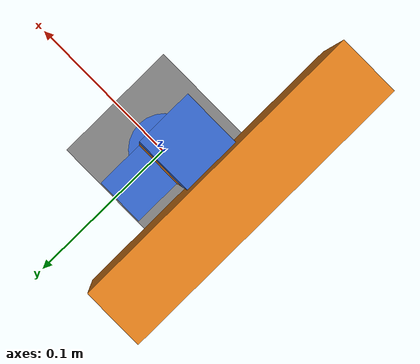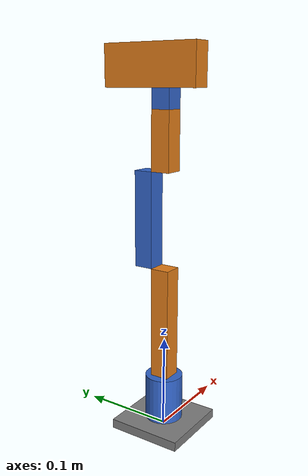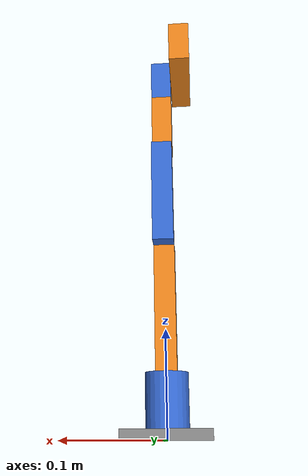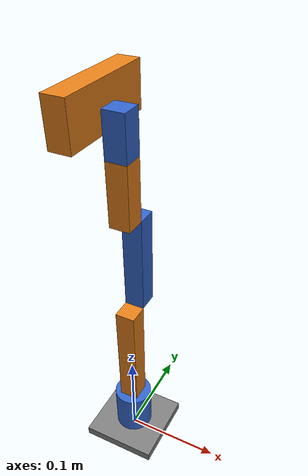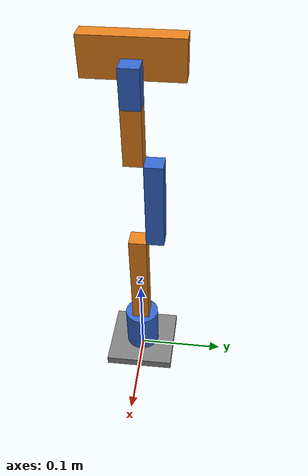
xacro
<?xml version="1.0"?>
<robot xmlns:xacro="http://www.ros.org/wiki/xacro" name="leader_arm">

  <!-- ===== Adjustable dimensions (meters) ===== -->
  <xacro:property name="base_size_x" value="0.08"/>
  <xacro:property name="base_size_y" value="0.08"/>
  <xacro:property name="base_thickness" value="0.01"/>

  <xacro:property name="link_1_length" value="0.05"/>
  <xacro:property name="link_1_radius" value="0.02"/>
  <xacro:property name="link_2_length" value="0.12"/>
  <xacro:property name="link_3_length" value="0.10"/>
  <xacro:property name="link_4_length" value="0.06"/>
  <xacro:property name="link_5_length" value="0.04"/>

  <!-- gripper bar: wide along y -->
  <xacro:property name="gripper_length" value="0.04"/>
  <xacro:property name="gripper_width" value="0.10"/>
  <xacro:property name="gripper_thickness" value="0.02"/>

  <!-- cuboid cross-section of links 2..4 -->
  <xacro:property name="link_width" value="0.02"/>
  <xacro:property name="link_depth" value="0.02"/>

  <!-- Joint limits (rad) and dynamics -->
  <xacro:property name="joint_limit" value="${pi / 2}"/>
  <xacro:property name="joint_effort" value="1.0"/>
  <xacro:property name="joint_velocity" value="2.0"/>

  <!-- Sideways offset between neighbouring links so they do not overlap -->
  <xacro:property name="link_y_offset" value="0.02"/>

  <material name="grey"><color rgba="0.5 0.5 0.5 1"/></material>
  <material name="blue"><color rgba="0.2 0.4 0.8 1"/></material>
  <material name="orange"><color rgba="0.9 0.5 0.1 1"/></material>

  <!-- Cuboid link whose origin is at its lower joint, extending along +z -->
  <xacro:macro name="box_link" params="name length material">
    <link name="${name}">
      <visual>
        <origin xyz="0 0 ${length / 2}"/>
        <geometry><box size="${link_width} ${link_depth} ${length}"/></geometry>
        <material name="${material}"/>
      </visual>
      <collision>
        <origin xyz="0 0 ${length / 2}"/>
        <geometry><box size="${link_width} ${link_depth} ${length}"/></geometry>
      </collision>
    </link>
  </xacro:macro>

  <xacro:macro name="revolute_joint" params="name parent child xyz axis">
    <joint name="${name}" type="revolute">
      <parent link="${parent}"/>
      <child link="${child}"/>
      <origin xyz="${xyz}"/>
      <axis xyz="${axis}"/>
      <limit lower="${-joint_limit}" upper="${joint_limit}"
             effort="${joint_effort}" velocity="${joint_velocity}"/>
    </joint>
  </xacro:macro>

  <link name="leader_base_plate">
    <visual>
      <origin xyz="0 0 ${base_thickness / 2}"/>
      <geometry><box size="${base_size_x} ${base_size_y} ${base_thickness}"/></geometry>
      <material name="grey"/>
    </visual>
    <collision>
      <origin xyz="0 0 ${base_thickness / 2}"/>
      <geometry><box size="${base_size_x} ${base_size_y} ${base_thickness}"/></geometry>
    </collision>
  </link>

  <!-- leader_link_1: cylinder rotating about the vertical axis -->
  <link name="leader_link_1">
    <visual>
      <origin xyz="0 0 ${link_1_length / 2}"/>
      <geometry><cylinder radius="${link_1_radius}" length="${link_1_length}"/></geometry>
      <material name="blue"/>
    </visual>
    <collision>
      <origin xyz="0 0 ${link_1_length / 2}"/>
      <geometry><cylinder radius="${link_1_radius}" length="${link_1_length}"/></geometry>
    </collision>
  </link>

  <xacro:revolute_joint name="leader_joint_1" parent="leader_base_plate" child="leader_link_1"
                        xyz="0 0 ${base_thickness}" axis="0 0 1"/>

  <xacro:box_link name="leader_link_2" length="${link_2_length}" material="orange"/>
  <xacro:revolute_joint name="leader_joint_2" parent="leader_link_1" child="leader_link_2"
                        xyz="0 0 ${link_1_length}" axis="0 1 0"/>

  <xacro:box_link name="leader_link_3" length="${link_3_length}" material="blue"/>
  <xacro:revolute_joint name="leader_joint_3" parent="leader_link_2" child="leader_link_3"
                        xyz="0 ${link_y_offset} ${link_2_length}" axis="0 1 0"/>

  <!-- URDF mimic supports a single source joint, so keeping leader_link_4 upright
       (q2 + q3 + q4 = 0) takes two chained mimic joints: joint_4 = -q2, joint_4b = -q3 -->
  <link name="leader_link_4_helper"/>
  <joint name="leader_joint_virtual" type="revolute">
    <parent link="leader_link_3"/>
    <child link="leader_link_4_helper"/>
    <origin xyz="0 ${-link_y_offset} ${link_3_length}"/>
    <axis xyz="0 1 0"/>
    <limit lower="${-2 * pi}" upper="${2 * pi}" effort="${joint_effort}" velocity="${joint_velocity}"/>
    <mimic joint="leader_joint_2" multiplier="-1" offset="0"/>
  </joint>

  <xacro:box_link name="leader_link_4" length="${link_4_length}" material="orange"/>
  <joint name="leader_joint_virtual_b" type="revolute">
    <parent link="leader_link_4_helper"/>
    <child link="leader_link_4"/>
    <axis xyz="0 1 0"/>
    <limit lower="${-2 * pi}" upper="${2 * pi}" effort="${joint_effort}" velocity="${joint_velocity}"/>
    <mimic joint="leader_joint_3" multiplier="-1" offset="3.14159"/>
  </joint>

  <!-- leader_link_4 points down, so its local +z (end of link) is downward.
       joint_4 rotates about the link axis, joint_gripper about the horizontal x axis. -->
  <xacro:box_link name="leader_link_5" length="${link_5_length}" material="blue"/>
  <xacro:revolute_joint name="leader_joint_4" parent="leader_link_4" child="leader_link_5"
                        xyz="0 0 ${link_4_length}" axis="0 0 1"/>

  <link name="leader_link_gripper">
    <visual>
      <origin xyz="-${gripper_thickness} 0 0"/>
      <geometry><box size="${gripper_thickness} ${gripper_width} ${gripper_length}"/></geometry>
      <material name="orange"/>
    </visual>
    <collision>
      <origin xyz="-${gripper_thickness} 0 0"/>
      <geometry><box size="${gripper_thickness} ${gripper_width} ${gripper_length}"/></geometry>
    </collision>
  </link>
  <xacro:revolute_joint name="leader_joint_gripper" parent="leader_link_5" child="leader_link_gripper"
                        xyz="0 0 ${link_5_length}" axis="-1 0 0"/>

</robot>
